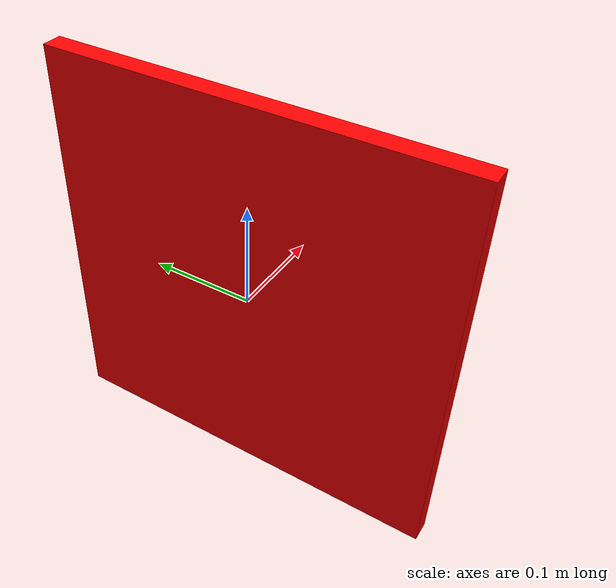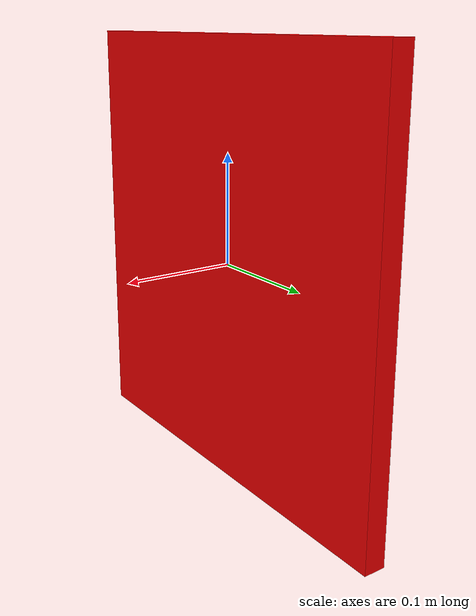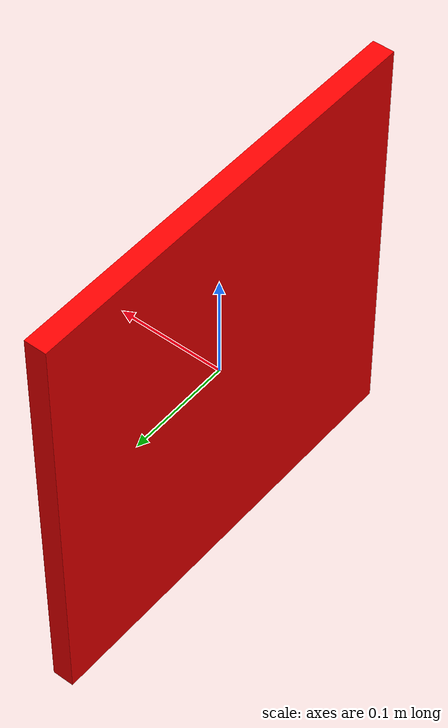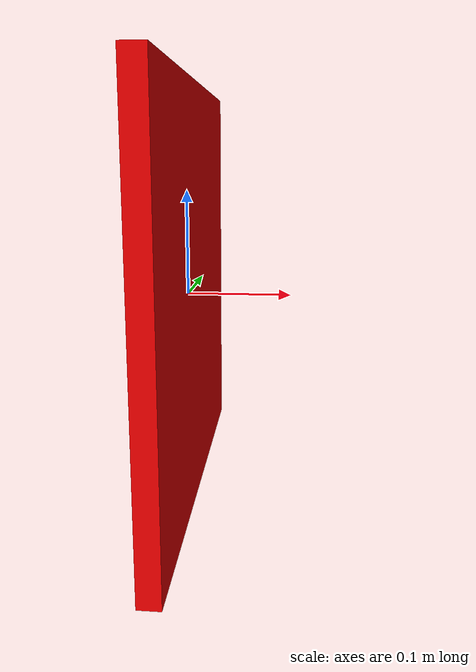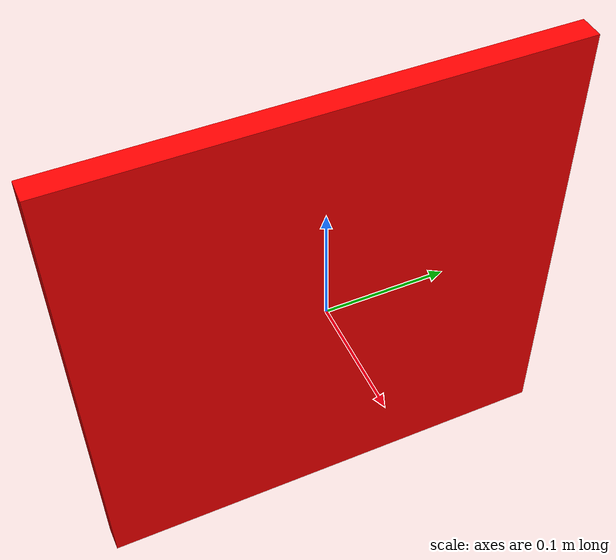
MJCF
<mujoco model="red_panel">
  <worldbody>
    <body name="baseLink">
      <geom type="box" size="0.01 0.2 0.2" rgba="1 0 0 1" mass="0.1"/>
    </body>
  </worldbody>
</mujoco>
